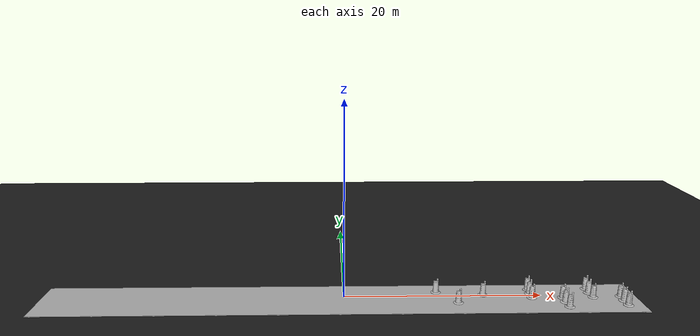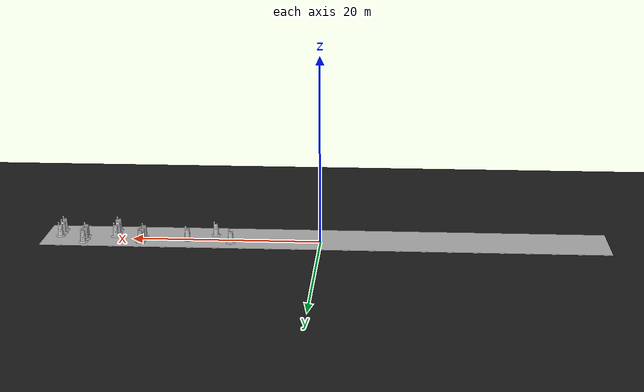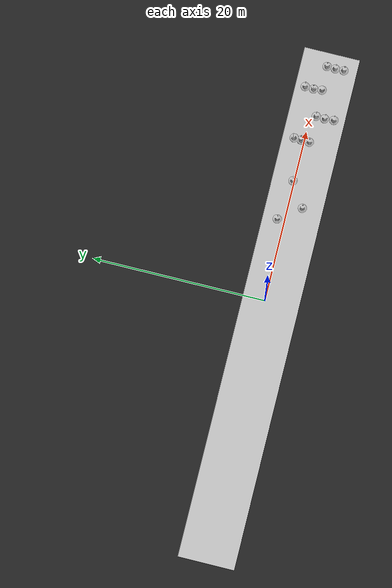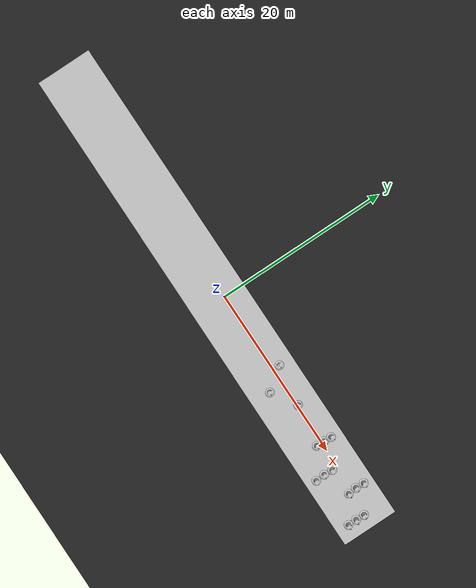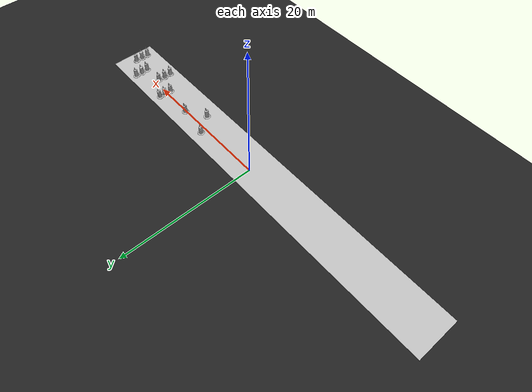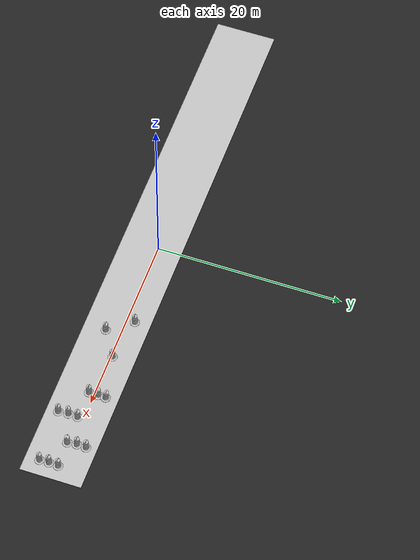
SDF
<sdf version="1.7">
 <world name="default">
  <spherical_coordinates>
   <surface_model>EARTH_WGS84</surface_model>
   <latitude_deg>38.161479</latitude_deg>
   <longitude_deg>-122.454630</longitude_deg>
   <elevation>488</elevation>
   <heading_deg>180</heading_deg>
  </spherical_coordinates>
  <light name="sun" type="directional">
   <pose>0 0 10 0 -0 0</pose>
   <diffuse>1 1 1 1</diffuse>
   <specular>0.5 0.5 0.5 1</specular>
   <attenuation>
    <range>1000</range>
    <constant>0.9</constant>
    <linear>0.01</linear>
    <quadratic>0.001</quadratic>
   </attenuation>
   <direction>-0.5 0.1 -0.9</direction>
   <spot><inner_angle>0</inner_angle><outer_angle>0</outer_angle><falloff>0</falloff></spot>
  </light>
  <model name="ground_plane">
   <static>1</static>
   <link name="link">
    <collision name="collision">
     <geometry><plane><normal>0 0 1</normal><size>100 100</size></plane></geometry>
     <surface>
      <contact><collide_bitmask>65535</collide_bitmask></contact>
      <friction><ode><mu>100</mu><mu2>50</mu2></ode></friction>
     </surface>
    </collision>
    <visual name="visual">
     <cast_shadows>0</cast_shadows>
     <geometry><plane><normal>0 0 1</normal><size>100 100</size></plane></geometry>
     <material>
      <script><uri>file://media/materials/scripts/gazebo.material</uri><name>Gazebo/Black</name></script>
     </material>
    </visual>
   </link>
  </model>
  <gravity>0 0 -9.8</gravity>
  <magnetic_field>6e-06 2.3e-05 -4.2e-05</magnetic_field>
  <atmosphere type="adiabatic"/>
  <physics type="ode">
   <max_step_size>0.001</max_step_size>
   <real_time_factor>1</real_time_factor>
   <real_time_update_rate>1000</real_time_update_rate>
  </physics>
  <scene><ambient>0.6 0.6 0.6 1</ambient><background>0.1 0.1 0.2 1</background><shadows>1</shadows></scene>
  <spherical_coordinates>
   <surface_model>EARTH_WGS84</surface_model>
   <latitude_deg>0</latitude_deg>
   <longitude_deg>0</longitude_deg>
   <elevation>0</elevation>
   <heading_deg>0</heading_deg>
  </spherical_coordinates>
  <model name="igvc_track2">
   <static>1</static>
   <link name="link">
    <collision name="collision"><geometry><box><size>60 6.51701 0.05</size></box></geometry></collision>
    <visual name="visual">
     <cast_shadows>0</cast_shadows>
     <geometry><box><size>60 6.51701 0.05</size></box></geometry>
     <material>
      <script>
       <uri>model://igvc_track1/materials/scripts</uri>
       <uri>model://igvc_track1/materials/textures</uri>
       <name>vrc/ground</name>
      </script>
     </material>
    </visual>
   </link>
   <link name="link2">
    <collision name="collision"><geometry><box><size>60 6.51701 0.05</size></box></geometry></collision>
    <visual name="visual">
     <cast_shadows>0</cast_shadows>
     <geometry><box><size>60 6.51701 0.07</size></box></geometry>
     <material>
      <script>
       <uri>model://igvc_track1/materials/scripts</uri>
       <uri>model://igvc_track1/materials/textures</uri>
       <name>vrc/track</name>
      </script>
     </material>
    </visual>
   </link>
   <pose>-0.424749 -0.714416 0 0 -0 0</pose>
  </model>
  <model name="Construction Barrel">
   <link name="link">
    <inertial>
     <pose>0 0 0.4 0 -0 0</pose>
     <mass>500</mass>
     <inertia><ixx>51.2096</ixx><iyy>51.2096</iyy><izz>25</izz><ixy>0</ixy><ixz>0</ixz><iyz>0</iyz></inertia>
    </inertial>
    <collision name="collision">
     <geometry><mesh><uri>model://construction_barrel/meshes/construction_barrel.dae</uri></mesh></geometry>
    </collision>
    <visual name="visual">
     <geometry><mesh><uri>model://construction_barrel/meshes/construction_barrel.dae</uri></mesh></geometry>
    </visual>
   </link>
   <pose>11.3309 -1.62128 0.024999 -1e-06 -3e-06 1.4e-05</pose>
  </model>
  <model name="Construction Barrel_0">
   <link name="link">
    <inertial>
     <pose>0 0 0.4 0 -0 0</pose>
     <mass>500</mass>
     <inertia><ixx>51.2096</ixx><iyy>51.2096</iyy><izz>25</izz><ixy>0</ixy><ixz>0</ixz><iyz>0</iyz></inertia>
    </inertial>
    <collision name="collision">
     <geometry><mesh><uri>model://construction_barrel/meshes/construction_barrel.dae</uri></mesh></geometry>
    </collision>
    <visual name="visual">
     <geometry><mesh><uri>model://construction_barrel/meshes/construction_barrel.dae</uri></mesh></geometry>
    </visual>
   </link>
   <pose>27.9659 -2.45645 0.037315 0.024174 -0.003178 0.010219</pose>
   <pose>5 0 0 0 -0 0</pose>
   <collision name="collision">
    <geometry><mesh><uri>model://ramp/meshes/ramp.dae</uri><scale>1 1 1</scale></mesh></geometry>
   </collision>
   <visual name="visual">
    <geometry><mesh><uri>model://ramp/meshes/ramp.dae</uri><scale>1 1 1</scale></mesh></geometry>
   </visual>
  </model>
  <model name="Construction Barrel_1">
   <link name="link">
    <inertial>
     <pose>0 0 0.4 0 -0 0</pose>
     <mass>500</mass>
     <inertia><ixx>51.2096</ixx><iyy>51.2096</iyy><izz>25</izz><ixy>0</ixy><ixz>0</ixz><iyz>0</iyz></inertia>
    </inertial>
    <collision name="collision">
     <geometry><mesh><uri>model://construction_barrel/meshes/construction_barrel.dae</uri></mesh></geometry>
    </collision>
    <visual name="visual">
     <geometry><mesh><uri>model://construction_barrel/meshes/construction_barrel.dae</uri></mesh></geometry>
    </visual>
   </link>
   <pose>27.9401 -1.45304 0.039818 0.029145 0.003827 -0.025276</pose>
  </model>
  <model name="Construction Barrel_2">
   <link name="link">
    <inertial>
     <pose>0 0 0.4 0 -0 0</pose>
     <mass>500</mass>
     <inertia><ixx>51.2096</ixx><iyy>51.2096</iyy><izz>25</izz><ixy>0</ixy><ixz>0</ixz><iyz>0</iyz></inertia>
    </inertial>
    <collision name="collision">
     <geometry><mesh><uri>model://construction_barrel/meshes/construction_barrel.dae</uri></mesh></geometry>
    </collision>
    <visual name="visual">
     <geometry><mesh><uri>model://construction_barrel/meshes/construction_barrel.dae</uri></mesh></geometry>
    </visual>
   </link>
   <pose>27.9831 -0.466356 0.024998 -2e-06 -1.1e-05 -0.036884</pose>
  </model>
  <model name="Construction Barrel_3">
   <link name="link">
    <inertial>
     <pose>0 0 0.4 0 -0 0</pose>
     <mass>500</mass>
     <inertia><ixx>51.2096</ixx><iyy>51.2096</iyy><izz>25</izz><ixy>0</ixy><ixz>0</ixz><iyz>0</iyz></inertia>
    </inertial>
    <collision name="collision">
     <geometry><mesh><uri>model://construction_barrel/meshes/construction_barrel.dae</uri></mesh></geometry>
    </collision>
    <visual name="visual">
     <geometry><mesh><uri>model://construction_barrel/meshes/construction_barrel.dae</uri></mesh></geometry>
    </visual>
   </link>
   <pose>25.106 1.40176 0.039868 -0.029162 0.003832 -0.001061</pose>
  </model>
  <model name="Construction Barrel_4">
   <link name="link">
    <inertial>
     <pose>0 0 0.4 0 -0 0</pose>
     <mass>500</mass>
     <inertia><ixx>51.2096</ixx><iyy>51.2096</iyy><izz>25</izz><ixy>0</ixy><ixz>0</ixz><iyz>0</iyz></inertia>
    </inertial>
    <collision name="collision">
     <geometry><mesh><uri>model://construction_barrel/meshes/construction_barrel.dae</uri></mesh></geometry>
    </collision>
    <visual name="visual">
     <geometry><mesh><uri>model://construction_barrel/meshes/construction_barrel.dae</uri></mesh></geometry>
    </visual>
   </link>
   <pose>25.0626 0.414115 0.040112 -0.02968 -0.003884 -0.02415</pose>
  </model>
  <model name="Construction Barrel_5">
   <link name="link">
    <inertial>
     <pose>0 0 0.4 0 -0 0</pose>
     <mass>500</mass>
     <inertia><ixx>51.2096</ixx><iyy>51.2096</iyy><izz>25</izz><ixy>0</ixy><ixz>0</ixz><iyz>0</iyz></inertia>
    </inertial>
    <collision name="collision">
     <geometry><mesh><uri>model://construction_barrel/meshes/construction_barrel.dae</uri></mesh></geometry>
    </collision>
    <visual name="visual">
     <geometry><mesh><uri>model://construction_barrel/meshes/construction_barrel.dae</uri></mesh></geometry>
    </visual>
   </link>
   <pose>25.165 -0.561917 0.024885 -8.8e-05 -1.7e-05 0.16594</pose>
  </model>
  <model name="Construction Barrel_6">
   <link name="link">
    <inertial>
     <pose>0 0 0.4 0 -0 0</pose>
     <mass>500</mass>
     <inertia><ixx>51.2096</ixx><iyy>51.2096</iyy><izz>25</izz><ixy>0</ixy><ixz>0</ixz><iyz>0</iyz></inertia>
    </inertial>
    <collision name="collision">
     <geometry><mesh><uri>model://construction_barrel/meshes/construction_barrel.dae</uri></mesh></geometry>
    </collision>
    <visual name="visual">
     <geometry><mesh><uri>model://construction_barrel/meshes/construction_barrel.dae</uri></mesh></geometry>
    </visual>
   </link>
   <pose>22.063 -2.71277 0.024999 -1e-06 -3e-06 -3e-05</pose>
  </model>
  <model name="Construction Barrel_7">
   <link name="link">
    <inertial>
     <pose>0 0 0.4 0 -0 0</pose>
     <mass>500</mass>
     <inertia><ixx>51.2096</ixx><iyy>51.2096</iyy><izz>25</izz><ixy>0</ixy><ixz>0</ixz><iyz>0</iyz></inertia>
    </inertial>
    <collision name="collision">
     <geometry><mesh><uri>model://construction_barrel/meshes/construction_barrel.dae</uri></mesh></geometry>
    </collision>
    <visual name="visual">
     <geometry><mesh><uri>model://construction_barrel/meshes/construction_barrel.dae</uri></mesh></geometry>
    </visual>
   </link>
   <pose>21.9898 -1.64062 0.03417 0.018015 -0.002371 -0.004676</pose>
  </model>
  <model name="Construction Barrel_8">
   <link name="link">
    <inertial>
     <pose>0 0 0.4 0 -0 0</pose>
     <mass>500</mass>
     <inertia><ixx>51.2096</ixx><iyy>51.2096</iyy><izz>25</izz><ixy>0</ixy><ixz>0</ixz><iyz>0</iyz></inertia>
    </inertial>
    <collision name="collision">
     <geometry><mesh><uri>model://construction_barrel/meshes/construction_barrel.dae</uri></mesh></geometry>
    </collision>
    <visual name="visual">
     <geometry><mesh><uri>model://construction_barrel/meshes/construction_barrel.dae</uri></mesh></geometry>
    </visual>
   </link>
   <pose>22.0492 -0.635044 0.023516 0.005252 -8.4e-05 -0.0082</pose>
  </model>
  <model name="Construction Barrel_9">
   <link name="link">
    <inertial>
     <pose>0 0 0.4 0 -0 0</pose>
     <mass>500</mass>
     <inertia><ixx>51.2096</ixx><iyy>51.2096</iyy><izz>25</izz><ixy>0</ixy><ixz>0</ixz><iyz>0</iyz></inertia>
    </inertial>
    <collision name="collision">
     <geometry><mesh><uri>model://construction_barrel/meshes/construction_barrel.dae</uri></mesh></geometry>
    </collision>
    <visual name="visual">
     <geometry><mesh><uri>model://construction_barrel/meshes/construction_barrel.dae</uri></mesh></geometry>
    </visual>
   </link>
   <pose>19.0007 1.21157 0.078401 -0.104944 0.01379 0.075742</pose>
  </model>
  <model name="Construction Barrel_10">
   <link name="link">
    <inertial>
     <pose>0 0 0.4 0 -0 0</pose>
     <mass>500</mass>
     <inertia><ixx>51.2096</ixx><iyy>51.2096</iyy><izz>25</izz><ixy>0</ixy><ixz>0</ixz><iyz>0</iyz></inertia>
    </inertial>
    <collision name="collision">
     <geometry><mesh><uri>model://construction_barrel/meshes/construction_barrel.dae</uri></mesh></geometry>
    </collision>
    <visual name="visual">
     <geometry><mesh><uri>model://construction_barrel/meshes/construction_barrel.dae</uri></mesh></geometry>
    </visual>
   </link>
   <pose>18.9588 0.366886 0.04722 -0.043615 0.005738 0.045252</pose>
  </model>
  <model name="Construction Barrel_11">
   <link name="link">
    <inertial>
     <pose>0 0 0.4 0 -0 0</pose>
     <mass>500</mass>
     <inertia><ixx>51.2096</ixx><iyy>51.2096</iyy><izz>25</izz><ixy>0</ixy><ixz>0</ixz><iyz>0</iyz></inertia>
    </inertial>
    <collision name="collision">
     <geometry><mesh><uri>model://construction_barrel/meshes/construction_barrel.dae</uri></mesh></geometry>
    </collision>
    <visual name="visual">
     <geometry><mesh><uri>model://construction_barrel/meshes/construction_barrel.dae</uri></mesh></geometry>
    </visual>
   </link>
   <pose>18.9396 -0.587342 0.024032 -0.000901 4.2e-05 0.026582</pose>
  </model>
  <model name="Construction Barrel_12">
   <link name="link">
    <inertial>
     <pose>0 0 0.4 0 -0 0</pose>
     <mass>500</mass>
     <inertia><ixx>51.2096</ixx><iyy>51.2096</iyy><izz>25</izz><ixy>0</ixy><ixz>0</ixz><iyz>0</iyz></inertia>
    </inertial>
    <collision name="collision">
     <geometry><mesh><uri>model://construction_barrel/meshes/construction_barrel.dae</uri></mesh></geometry>
    </collision>
    <visual name="visual">
     <geometry><mesh><uri>model://construction_barrel/meshes/construction_barrel.dae</uri></mesh></geometry>
    </visual>
   </link>
   <pose>14.1508 0.164491 0.024999 -1e-06 -4e-06 -3.8e-05</pose>
  </model>
  <model name="Construction Barrel_13">
   <link name="link">
    <inertial>
     <pose>0 0 0.4 0 -0 0</pose>
     <mass>500</mass>
     <inertia><ixx>51.2096</ixx><iyy>51.2096</iyy><izz>25</izz><ixy>0</ixy><ixz>0</ixz><iyz>0</iyz></inertia>
    </inertial>
    <collision name="collision">
     <geometry><mesh><uri>model://construction_barrel/meshes/construction_barrel.dae</uri></mesh></geometry>
    </collision>
    <visual name="visual">
     <geometry><mesh><uri>model://construction_barrel/meshes/construction_barrel.dae</uri></mesh></geometry>
    </visual>
   </link>
   <pose>9.45069 0.868561 0.024999 -1e-06 -2e-06 -4e-05</pose>
  </model>
  <light name="user_directional_light_0" type="directional">
   <pose>-56.6625 -1.93524 1 0 -0 0</pose>
   <diffuse>0.5 0.5 0.5 1</diffuse>
   <specular>0.1 0.1 0.1 1</specular>
   <direction>0.1 0.1 -0.9</direction>
   <attenuation>
    <range>20</range>
    <constant>0.5</constant>
    <linear>0.01</linear>
    <quadratic>0.001</quadratic>
   </attenuation>
  </light>
 </world>
</sdf>
